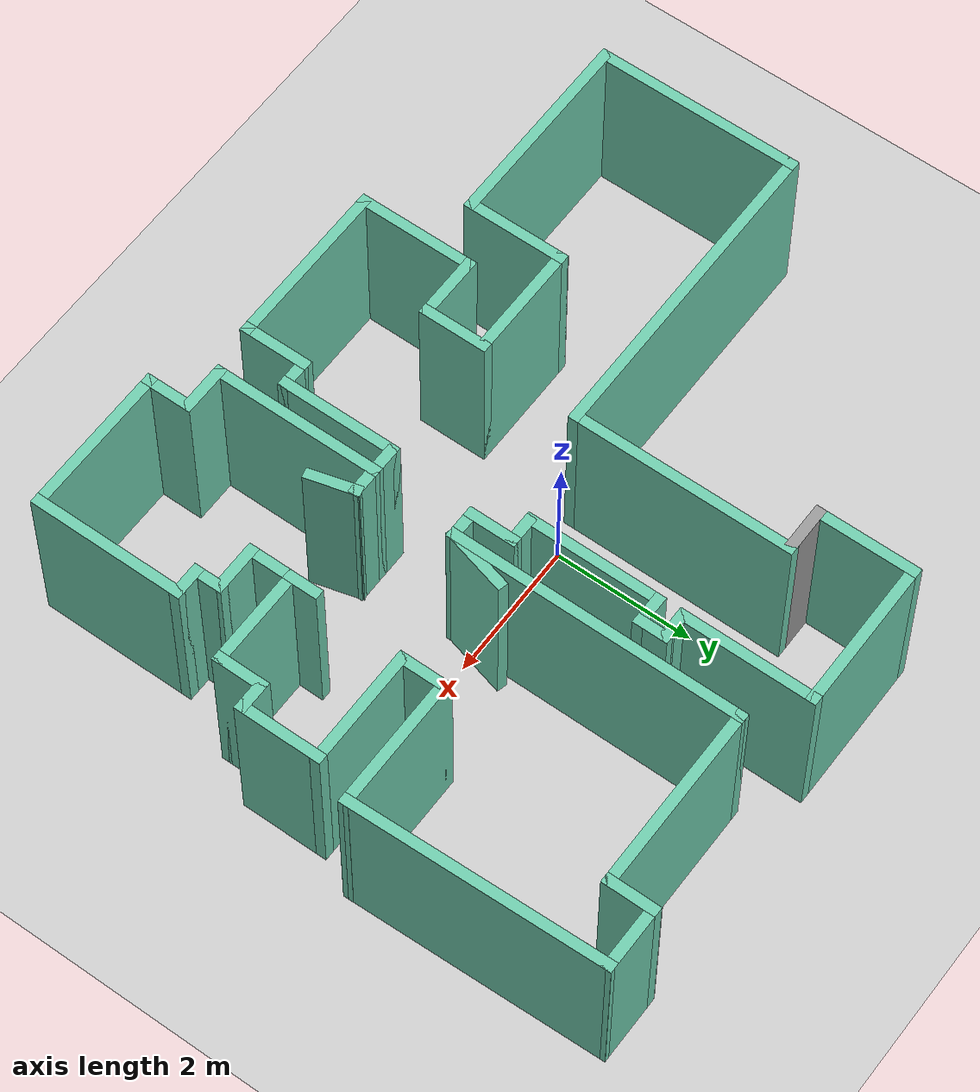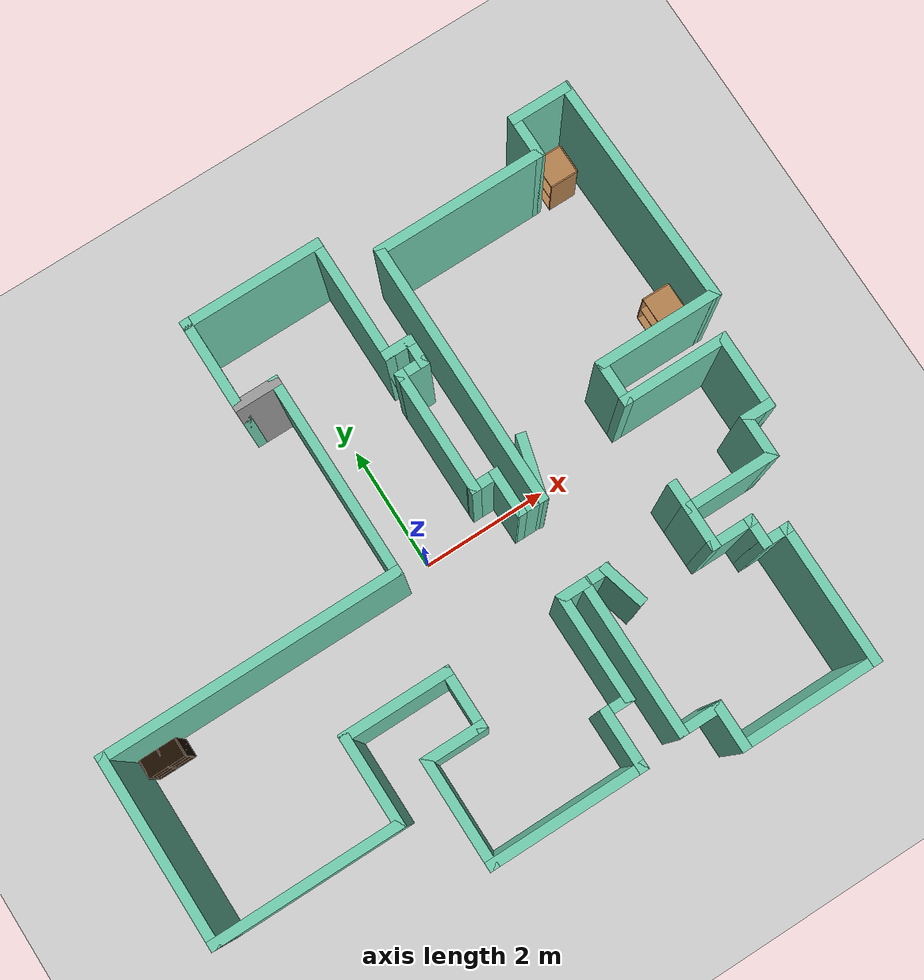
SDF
<sdf version="1.6">
 <world name="default">
  <light name="sun" type="directional">
   <pose>0 0 10 0 -0 0</pose>
   <diffuse>0.8 0.8 0.8 1</diffuse>
   <specular>0.2 0.2 0.2 1</specular>
   <attenuation>
    <range>1000</range>
    <constant>0.9</constant>
    <linear>0.01</linear>
    <quadratic>0.001</quadratic>
   </attenuation>
   <direction>-0.5 0.1 -0.9</direction>
  </light>
  <model name="ground_plane">
   <static>1</static>
   <link name="link">
    <collision name="collision">
     <geometry><plane><normal>0 0 1</normal><size>100 100</size></plane></geometry>
     <surface>
      <contact><collide_bitmask>65535</collide_bitmask></contact>
      <friction><ode><mu>100</mu><mu2>50</mu2></ode></friction>
     </surface>
    </collision>
    <visual name="visual">
     <cast_shadows>0</cast_shadows>
     <geometry><plane><normal>0 0 1</normal><size>100 100</size></plane></geometry>
     <material>
      <script><uri>file://media/materials/scripts/gazebo.material</uri><name>Gazebo/Grey</name></script>
     </material>
    </visual>
   </link>
  </model>
  <gravity>0 0 -9.8</gravity>
  <magnetic_field>6e-06 2.3e-05 -4.2e-05</magnetic_field>
  <atmosphere type="adiabatic"/>
  <physics name="default_physics" default="0" type="ode">
   <max_step_size>0.001</max_step_size>
   <real_time_factor>1</real_time_factor>
   <real_time_update_rate>1000</real_time_update_rate>
  </physics>
  <scene><ambient>0.4 0.4 0.4 1</ambient><background>0.7 0.7 0.7 1</background><shadows>1</shadows></scene>
  <audio><device>default</device></audio>
  <spherical_coordinates>
   <surface_model>EARTH_WGS84</surface_model>
   <latitude_deg>0</latitude_deg>
   <longitude_deg>0</longitude_deg>
   <elevation>0</elevation>
   <heading_deg>0</heading_deg>
  </spherical_coordinates>
  <model name="map_73">
   <pose>0.066687 -0.126076 0 0 -0 0</pose>
   <link name="Wall_1">
    <collision name="Wall_1_Collision">
     <geometry><box><size>1.5 0.15 2.5</size></box></geometry>
     <pose>0 0 1.25 0 -0 0</pose>
    </collision>
    <visual name="Wall_1_Visual">
     <pose>0 0 1.25 0 -0 0</pose>
     <geometry><box><size>1.5 0.15 2.5</size></box></geometry>
     <material>
      <script><uri>file://media/materials/scripts/gazebo.material</uri><name>Gazebo/Grey</name></script>
      <ambient>0.435294 0.796078 0.67451 1</ambient>
     </material>
     <meta><layer>0</layer></meta>
    </visual>
    <pose>-1.17603 3.74897 0 0 -0 -1.5708</pose>
   </link>
   <link name="Wall_10">
    <collision name="Wall_10_Collision">
     <geometry><box><size>1 0.15 2.5</size></box></geometry>
     <pose>0 0 1.25 0 -0 0</pose>
    </collision>
    <visual name="Wall_10_Visual">
     <pose>0 0 1.25 0 -0 0</pose>
     <geometry><box><size>1 0.15 2.5</size></box></geometry>
     <material>
      <script><uri>file://media/materials/scripts/gazebo.material</uri><name>Gazebo/Grey</name></script>
      <ambient>0.435294 0.796078 0.67451 1</ambient>
     </material>
     <meta><layer>0</layer></meta>
    </visual>
    <pose>-1.15103 -2.37603 0 0 -0 3.14159</pose>
   </link>
   <link name="Wall_11">
    <collision name="Wall_11_Collision">
     <geometry><box><size>1.75 0.15 2.5</size></box></geometry>
     <pose>0 0 1.25 0 -0 0</pose>
    </collision>
    <visual name="Wall_11_Visual">
     <pose>0 0 1.25 0 -0 0</pose>
     <geometry><box><size>1.75 0.15 2.5</size></box></geometry>
     <material>
      <script><uri>file://media/materials/scripts/gazebo.material</uri><name>Gazebo/Grey</name></script>
      <ambient>0.435294 0.796078 0.67451 1</ambient>
     </material>
     <meta><layer>0</layer></meta>
    </visual>
    <pose>-1.57603 -3.17603 0 0 -0 -1.5708</pose>
   </link>
   <link name="Wall_18">
    <collision name="Wall_18_Collision">
     <geometry><box><size>2.5 0.15 2.5</size></box></geometry>
     <pose>0 0 1.25 0 -0 0</pose>
    </collision>
    <visual name="Wall_18_Visual">
     <pose>0 0 1.25 0 -0 0</pose>
     <geometry><box><size>2.5 0.15 2.5</size></box></geometry>
     <material>
      <script><uri>file://media/materials/scripts/gazebo.material</uri><name>Gazebo/Grey</name></script>
      <ambient>0.435294 0.796078 0.67451 1</ambient>
     </material>
     <meta><layer>0</layer></meta>
    </visual>
    <pose>-0.401027 -3.97603 0 0 -0 0</pose>
   </link>
   <link name="Wall_19">
    <collision name="Wall_19_Collision">
     <geometry><box><size>1 0.15 2.5</size></box></geometry>
     <pose>0 0 1.25 0 -0 0</pose>
    </collision>
    <visual name="Wall_19_Visual">
     <pose>0 0 1.25 0 -0 0</pose>
     <geometry><box><size>1 0.15 2.5</size></box></geometry>
     <material>
      <script><uri>file://media/materials/scripts/gazebo.material</uri><name>Gazebo/Grey</name></script>
      <ambient>0.435294 0.796078 0.67451 1</ambient>
     </material>
     <meta><layer>0</layer></meta>
    </visual>
    <pose>0.773973 -3.55103 0 0 -0 1.5708</pose>
   </link>
   <link name="Wall_2">
    <collision name="Wall_2_Collision">
     <geometry><box><size>0.75 0.15 2.5</size></box></geometry>
     <pose>0 0 1.25 0 -0 0</pose>
    </collision>
    <visual name="Wall_2_Visual">
     <pose>0 0 1.25 0 -0 0</pose>
     <geometry><box><size>0.75 0.15 2.5</size></box></geometry>
     <material>
      <script><uri>file://media/materials/scripts/gazebo.material</uri><name>Gazebo/Grey</name></script>
      <ambient>1 1 1 1</ambient>
     </material>
     <meta><layer>0</layer></meta>
    </visual>
    <pose>-0.876027 3.07397 0 0 -0 0</pose>
   </link>
   <link name="Wall_20">
    <collision name="Wall_20_Collision">
     <geometry><box><size>0.5 0.15 2.5</size></box></geometry>
     <pose>0 0 1.25 0 -0 0</pose>
    </collision>
    <visual name="Wall_20_Visual">
     <pose>0 0 1.25 0 -0 0</pose>
     <geometry><box><size>0.5 0.15 2.5</size></box></geometry>
     <material>
      <script><uri>file://media/materials/scripts/gazebo.material</uri><name>Gazebo/Grey</name></script>
      <ambient>0.435294 0.796078 0.67451 1</ambient>
     </material>
     <meta><layer>0</layer></meta>
    </visual>
    <pose>0.948973 -3.12603 0 0 -0 0</pose>
   </link>
   <link name="Wall_21">
    <collision name="Wall_21_Collision">
     <geometry><box><size>1.75 0.15 2.5</size></box></geometry>
     <pose>0 0 1.25 0 -0 0</pose>
    </collision>
    <visual name="Wall_21_Visual">
     <pose>0 0 1.25 0 -0 0</pose>
     <geometry><box><size>1.75 0.15 2.5</size></box></geometry>
     <material>
      <script><uri>file://media/materials/scripts/gazebo.material</uri><name>Gazebo/Grey</name></script>
      <ambient>0.435294 0.796078 0.67451 1</ambient>
     </material>
     <meta><layer>0</layer></meta>
    </visual>
    <pose>1.12397 -2.32603 0 0 -0 1.5708</pose>
   </link>
   <link name="Wall_22">
    <collision name="Wall_22_Collision">
     <geometry><box><size>0.5 0.15 2.5</size></box></geometry>
     <pose>0 0 1.25 0 -0 0</pose>
    </collision>
    <visual name="Wall_22_Visual">
     <pose>0 0 1.25 0 -0 0</pose>
     <geometry><box><size>0.5 0.15 2.5</size></box></geometry>
     <material>
      <script><uri>file://media/materials/scripts/gazebo.material</uri><name>Gazebo/Grey</name></script>
      <ambient>0.435294 0.796078 0.67451 1</ambient>
     </material>
     <meta><layer>0</layer></meta>
    </visual>
    <pose>1.29897 -1.52603 0 0 -0 0</pose>
   </link>
   <link name="Wall_23">
    <collision name="Wall_23_Collision">
     <geometry><box><size>2.5 0.15 2.5</size></box></geometry>
     <pose>0 0 1.25 0 -0 0</pose>
    </collision>
    <visual name="Wall_23_Visual">
     <pose>0 0 1.25 0 -0 0</pose>
     <geometry><box><size>2.5 0.15 2.5</size></box></geometry>
     <material>
      <script><uri>file://media/materials/scripts/gazebo.material</uri><name>Gazebo/Grey</name></script>
      <ambient>0.435294 0.796078 0.67451 1</ambient>
     </material>
     <meta><layer>0</layer></meta>
    </visual>
    <pose>1.47397 -2.70103 0 0 -0 -1.5708</pose>
   </link>
   <link name="Wall_24">
    <collision name="Wall_24_Collision">
     <geometry><box><size>0.75 0.15 2.5</size></box></geometry>
     <pose>0 0 1.25 0 -0 0</pose>
    </collision>
    <visual name="Wall_24_Visual">
     <pose>0 0 1.25 0 -0 0</pose>
     <geometry><box><size>0.75 0.15 2.5</size></box></geometry>
     <material>
      <script><uri>file://media/materials/scripts/gazebo.material</uri><name>Gazebo/Grey</name></script>
      <ambient>0.435294 0.796078 0.67451 1</ambient>
     </material>
     <meta><layer>0</layer></meta>
    </visual>
    <pose>1.77397 -3.87603 0 0 -0 0</pose>
   </link>
   <link name="Wall_25">
    <collision name="Wall_25_Collision">
     <geometry><box><size>0.75 0.15 2.5</size></box></geometry>
     <pose>0 0 1.25 0 -0 0</pose>
    </collision>
    <visual name="Wall_25_Visual">
     <pose>0 0 1.25 0 -0 0</pose>
     <geometry><box><size>0.75 0.15 2.5</size></box></geometry>
     <material>
      <script><uri>file://media/materials/scripts/gazebo.material</uri><name>Gazebo/Grey</name></script>
      <ambient>0.435294 0.796078 0.67451 1</ambient>
     </material>
     <meta><layer>0</layer></meta>
    </visual>
    <pose>2.07397 -4.17603 0 0 -0 -1.5708</pose>
   </link>
   <link name="Wall_26">
    <collision name="Wall_26_Collision">
     <geometry><box><size>2.25 0.15 2.5</size></box></geometry>
     <pose>0 0 1.25 0 -0 0</pose>
    </collision>
    <visual name="Wall_26_Visual">
     <pose>0 0 1.25 0 -0 0</pose>
     <geometry><box><size>2.25 0.15 2.5</size></box></geometry>
     <material>
      <script><uri>file://media/materials/scripts/gazebo.material</uri><name>Gazebo/Grey</name></script>
      <ambient>0.435294 0.796078 0.67451 1</ambient>
     </material>
     <meta><layer>0</layer></meta>
    </visual>
    <pose>3.12397 -4.47603 0 0 -0 0</pose>
   </link>
   <link name="Wall_27">
    <collision name="Wall_27_Collision">
     <geometry><box><size>2.25 0.15 2.5</size></box></geometry>
     <pose>0 0 1.25 0 -0 0</pose>
    </collision>
    <visual name="Wall_27_Visual">
     <pose>0 0 1.25 0 -0 0</pose>
     <geometry><box><size>2.25 0.15 2.5</size></box></geometry>
     <material>
      <script><uri>file://media/materials/scripts/gazebo.material</uri><name>Gazebo/Grey</name></script>
      <ambient>0.435294 0.796078 0.67451 1</ambient>
     </material>
     <meta><layer>0</layer></meta>
    </visual>
    <pose>4.17397 -3.42603 0 0 -0 1.5708</pose>
   </link>
   <link name="Wall_28">
    <collision name="Wall_28_Collision">
     <geometry><box><size>0.5 0.15 2.5</size></box></geometry>
     <pose>0 0 1.25 0 -0 0</pose>
    </collision>
    <visual name="Wall_28_Visual">
     <pose>0 0 1.25 0 -0 0</pose>
     <geometry><box><size>0.5 0.15 2.5</size></box></geometry>
     <material>
      <script><uri>file://media/materials/scripts/gazebo.material</uri><name>Gazebo/Grey</name></script>
      <ambient>0.435294 0.796078 0.67451 1</ambient>
     </material>
     <meta><layer>0</layer></meta>
    </visual>
    <pose>3.99897 -2.37603 0 0 -0 3.14159</pose>
   </link>
   <link name="Wall_29">
    <collision name="Wall_29_Collision">
     <geometry><box><size>0.5 0.15 2.5</size></box></geometry>
     <pose>0 0 1.25 0 -0 0</pose>
    </collision>
    <visual name="Wall_29_Visual">
     <pose>0 0 1.25 0 -0 0</pose>
     <geometry><box><size>0.5 0.15 2.5</size></box></geometry>
     <material>
      <script><uri>file://media/materials/scripts/gazebo.material</uri><name>Gazebo/Grey</name></script>
      <ambient>0.435294 0.796078 0.67451 1</ambient>
     </material>
     <meta><layer>0</layer></meta>
    </visual>
    <pose>3.82397 -2.20103 0 0 -0 1.5708</pose>
   </link>
   <link name="Wall_3">
    <collision name="Wall_3_Collision">
     <geometry><box><size>3.25 0.15 2.5</size></box></geometry>
     <pose>0 0 1.25 0 -0 0</pose>
    </collision>
    <visual name="Wall_3_Visual">
     <pose>0 0 1.25 0 -0 0</pose>
     <geometry><box><size>3.25 0.15 2.5</size></box></geometry>
     <material>
      <script><uri>file://media/materials/scripts/gazebo.material</uri><name>Gazebo/Grey</name></script>
      <ambient>0.435294 0.796078 0.67451 1</ambient>
     </material>
     <meta><layer>0</layer></meta>
    </visual>
    <pose>-0.576027 1.52397 0 0 -0 -1.5708</pose>
   </link>
   <link name="Wall_30">
    <collision name="Wall_30_Collision">
     <geometry><box><size>0.75 0.15 2.5</size></box></geometry>
     <pose>0 0 1.25 0 -0 0</pose>
    </collision>
    <visual name="Wall_30_Visual">
     <pose>0 0 1.25 0 -0 0</pose>
     <geometry><box><size>0.75 0.15 2.5</size></box></geometry>
     <material>
      <script><uri>file://media/materials/scripts/gazebo.material</uri><name>Gazebo/Grey</name></script>
      <ambient>0.435294 0.796078 0.67451 1</ambient>
     </material>
     <meta><layer>0</layer></meta>
    </visual>
    <pose>3.52397 -2.02603 0 0 -0 3.14159</pose>
   </link>
   <link name="Wall_31">
    <collision name="Wall_31_Collision">
     <geometry><box><size>0.75 0.15 2.5</size></box></geometry>
     <pose>0 0 1.25 0 -0 0</pose>
    </collision>
    <visual name="Wall_31_Visual">
     <pose>0 0 1.25 0 -0 0</pose>
     <geometry><box><size>0.75 0.15 2.5</size></box></geometry>
     <material>
      <script><uri>file://media/materials/scripts/gazebo.material</uri><name>Gazebo/Grey</name></script>
      <ambient>0.435294 0.796078 0.67451 1</ambient>
     </material>
     <meta><layer>0</layer></meta>
    </visual>
    <pose>3.22397 -1.72603 0 0 -0 1.5708</pose>
   </link>
   <link name="Wall_32">
    <collision name="Wall_32_Collision">
     <geometry><box><size>1.5 0.15 2.5</size></box></geometry>
     <pose>0 0 1.25 0 -0 0</pose>
    </collision>
    <visual name="Wall_32_Visual">
     <pose>0 0 1.25 0 -0 0</pose>
     <geometry><box><size>1.5 0.15 2.5</size></box></geometry>
     <material>
      <script><uri>file://media/materials/scripts/gazebo.material</uri><name>Gazebo/Grey</name></script>
      <ambient>0.435294 0.796078 0.67451 1</ambient>
     </material>
     <meta><layer>0</layer></meta>
    </visual>
    <pose>3.89897 -1.42603 0 0 -0 0</pose>
   </link>
   <link name="Wall_33">
    <collision name="Wall_33_Collision">
     <geometry><box><size>0.75 0.15 2.5</size></box></geometry>
     <pose>0 0 1.25 0 -0 0</pose>
    </collision>
    <visual name="Wall_33_Visual">
     <pose>0 0 1.25 0 -0 0</pose>
     <geometry><box><size>0.75 0.15 2.5</size></box></geometry>
     <material>
      <script><uri>file://media/materials/scripts/gazebo.material</uri><name>Gazebo/Grey</name></script>
      <ambient>0.435294 0.796078 0.67451 1</ambient>
     </material>
     <meta><layer>0</layer></meta>
    </visual>
    <pose>4.57397 -1.12603 0 0 -0 1.5708</pose>
   </link>
   <link name="Wall_34">
    <collision name="Wall_34_Collision">
     <geometry><box><size>0.5 0.15 2.5</size></box></geometry>
     <pose>0 0 1.25 0 -0 0</pose>
    </collision>
    <visual name="Wall_34_Visual">
     <pose>0 0 1.25 0 -0 0</pose>
     <geometry><box><size>0.5 0.15 2.5</size></box></geometry>
     <material>
      <script><uri>file://media/materials/scripts/gazebo.material</uri><name>Gazebo/Grey</name></script>
      <ambient>0.435294 0.796078 0.67451 1</ambient>
     </material>
     <meta><layer>0</layer></meta>
    </visual>
    <pose>4.74897 -0.826027 0 0 -0 0</pose>
   </link>
   <link name="Wall_35">
    <collision name="Wall_35_Collision">
     <geometry><box><size>1.25 0.15 2.5</size></box></geometry>
     <pose>0 0 1.25 0 -0 0</pose>
    </collision>
    <visual name="Wall_35_Visual">
     <pose>0 0 1.25 0 -0 0</pose>
     <geometry><box><size>1.25 0.15 2.5</size></box></geometry>
     <material>
      <script><uri>file://media/materials/scripts/gazebo.material</uri><name>Gazebo/Grey</name></script>
      <ambient>0.435294 0.796078 0.67451 1</ambient>
     </material>
     <meta><layer>0</layer></meta>
    </visual>
    <pose>4.92397 -0.276027 0 0 -0 1.5708</pose>
   </link>
   <link name="Wall_36">
    <collision name="Wall_36_Collision">
     <geometry><box><size>1.75 0.15 2.5</size></box></geometry>
     <pose>0 0 1.25 0 -0 0</pose>
    </collision>
    <visual name="Wall_36_Visual">
     <pose>0 0 1.25 0 -0 0</pose>
     <geometry><box><size>1.75 0.15 2.5</size></box></geometry>
     <material>
      <script><uri>file://media/materials/scripts/gazebo.material</uri><name>Gazebo/Grey</name></script>
      <ambient>0.435294 0.796078 0.67451 1</ambient>
     </material>
     <meta><layer>0</layer></meta>
    </visual>
    <pose>4.12397 0.273973 0 0 -0 3.14159</pose>
   </link>
   <link name="Wall_37">
    <collision name="Wall_37_Collision">
     <geometry><box><size>0.75 0.15 2.5</size></box></geometry>
     <pose>0 0 1.25 0 -0 0</pose>
    </collision>
    <visual name="Wall_37_Visual">
     <pose>0 0 1.25 0 -0 0</pose>
     <geometry><box><size>0.75 0.15 2.5</size></box></geometry>
     <material>
      <script><uri>file://media/materials/scripts/gazebo.material</uri><name>Gazebo/Grey</name></script>
      <ambient>0.435294 0.796078 0.67451 1</ambient>
     </material>
     <meta><layer>0</layer></meta>
    </visual>
    <pose>3.32397 0.573973 0 0 -0 1.5708</pose>
   </link>
   <link name="Wall_38">
    <collision name="Wall_38_Collision">
     <geometry><box><size>2 0.15 2.5</size></box></geometry>
     <pose>0 0 1.25 0 -0 0</pose>
    </collision>
    <visual name="Wall_38_Visual">
     <pose>0 0 1.25 0 -0 0</pose>
     <geometry><box><size>2 0.15 2.5</size></box></geometry>
     <material>
      <script><uri>file://media/materials/scripts/gazebo.material</uri><name>Gazebo/Grey</name></script>
      <ambient>0.435294 0.796078 0.67451 1</ambient>
     </material>
     <meta><layer>0</layer></meta>
    </visual>
    <pose>4.24897 0.873973 0 0 -0 0</pose>
   </link>
   <link name="Wall_4">
    <collision name="Wall_4_Collision">
     <geometry><box><size>4.75 0.15 2.5</size></box></geometry>
     <pose>0 0 1.25 0 -0 0</pose>
    </collision>
    <visual name="Wall_4_Visual">
     <pose>0 0 1.25 0 -0 0</pose>
     <geometry><box><size>4.75 0.15 2.5</size></box></geometry>
     <material>
      <script><uri>file://media/materials/scripts/gazebo.material</uri><name>Gazebo/Grey</name></script>
      <ambient>0.435294 0.796078 0.67451 1</ambient>
     </material>
     <meta><layer>0</layer></meta>
    </visual>
    <pose>-2.87603 -0.026027 0 0 -0 3.14159</pose>
   </link>
   <link name="Wall_40">
    <collision name="Wall_40_Collision">
     <geometry><box><size>0.5 0.15 2.5</size></box></geometry>
     <pose>0 0 1.25 0 -0 0</pose>
    </collision>
    <visual name="Wall_40_Visual">
     <pose>0 0 1.25 0 -0 0</pose>
     <geometry><box><size>0.5 0.15 2.5</size></box></geometry>
     <material>
      <script><uri>file://media/materials/scripts/gazebo.material</uri><name>Gazebo/Grey</name></script>
      <ambient>0.435294 0.796078 0.67451 1</ambient>
     </material>
     <meta><layer>0</layer></meta>
    </visual>
    <pose>1.64897 -1.52603 0 0 -0 0</pose>
   </link>
   <link name="Wall_41">
    <collision name="Wall_41_Collision">
     <geometry><box><size>0.75 0.15 2.5</size></box></geometry>
     <pose>0 0 1.25 0 -0 0</pose>
    </collision>
    <visual name="Wall_41_Visual">
     <pose>0 0 1.25 0 -0 0</pose>
     <geometry><box><size>0.75 0.15 2.5</size></box></geometry>
     <material>
      <script><uri>file://media/materials/scripts/gazebo.material</uri><name>Gazebo/Grey</name></script>
      <ambient>0.435294 0.796078 0.67451 1</ambient>
     </material>
     <meta><layer>0</layer></meta>
    </visual>
    <pose>1.90162 -1.8158 0 0 -0 -1.309</pose>
   </link>
   <link name="Wall_43">
    <collision name="Wall_43_Collision">
     <geometry><box><size>0.5 0.15 2.5</size></box></geometry>
     <pose>0 0 1.25 0 -0 0</pose>
    </collision>
    <visual name="Wall_43_Visual">
     <pose>0 0 1.25 0 -0 0</pose>
     <geometry><box><size>0.5 0.15 2.5</size></box></geometry>
     <material>
      <script><uri>file://media/materials/scripts/gazebo.material</uri><name>Gazebo/Grey</name></script>
      <ambient>0.435294 0.796078 0.67451 1</ambient>
     </material>
     <meta><layer>0</layer></meta>
    </visual>
    <pose>3.22397 -1.25103 0 0 -0 1.5708</pose>
   </link>
   <link name="Wall_5">
    <collision name="Wall_5_Collision">
     <geometry><box><size>3 0.15 2.5</size></box></geometry>
     <pose>0 0 1.25 0 -0 0</pose>
    </collision>
    <visual name="Wall_5_Visual">
     <pose>0 0 1.25 0 -0 0</pose>
     <geometry><box><size>3 0.15 2.5</size></box></geometry>
     <material>
      <script><uri>file://media/materials/scripts/gazebo.material</uri><name>Gazebo/Grey</name></script>
      <ambient>0.435294 0.796078 0.67451 1</ambient>
     </material>
     <meta><layer>0</layer></meta>
    </visual>
    <pose>-5.17603 -1.45103 0 0 -0 -1.5708</pose>
   </link>
   <link name="Wall_54">
    <collision name="Wall_54_Collision">
     <geometry><box><size>2.25 0.15 2.5</size></box></geometry>
     <pose>0 0 1.25 0 -0 0</pose>
    </collision>
    <visual name="Wall_54_Visual">
     <pose>0 0 1.25 0 -0 0</pose>
     <geometry><box><size>2.25 0.15 2.5</size></box></geometry>
     <material>
      <script><uri>file://media/materials/scripts/gazebo.material</uri><name>Gazebo/Grey</name></script>
      <ambient>0.435294 0.796078 0.67451 1</ambient>
     </material>
     <meta><layer>0</layer></meta>
    </visual>
    <pose>-0.126027 4.42397 0 0 -0 0</pose>
   </link>
   <link name="Wall_55">
    <collision name="Wall_55_Collision">
     <geometry><box><size>2 0.15 2.5</size></box></geometry>
     <pose>0 0 1.25 0 -0 0</pose>
    </collision>
    <visual name="Wall_55_Visual">
     <pose>0 0 1.25 0 -0 0</pose>
     <geometry><box><size>2 0.15 2.5</size></box></geometry>
     <material>
      <script><uri>file://media/materials/scripts/gazebo.material</uri><name>Gazebo/Grey</name></script>
      <ambient>0.435294 0.796078 0.67451 1</ambient>
     </material>
     <meta><layer>0</layer></meta>
    </visual>
    <pose>0.923973 3.49897 0 0 -0 -1.5708</pose>
   </link>
   <link name="Wall_56">
    <collision name="Wall_56_Collision">
     <geometry><box><size>0.5 0.15 2.5</size></box></geometry>
     <pose>0 0 1.25 0 -0 0</pose>
    </collision>
    <visual name="Wall_56_Visual">
     <pose>0 0 1.25 0 -0 0</pose>
     <geometry><box><size>0.5 0.15 2.5</size></box></geometry>
     <material>
      <script><uri>file://media/materials/scripts/gazebo.material</uri><name>Gazebo/Grey</name></script>
      <ambient>0.435294 0.796078 0.67451 1</ambient>
     </material>
     <meta><layer>0</layer></meta>
    </visual>
    <pose>1.09897 2.57397 0 0 -0 0</pose>
   </link>
   <link name="Wall_59">
    <collision name="Wall_59_Collision">
     <geometry><box><size>0.5 0.15 2.5</size></box></geometry>
     <pose>0 0 1.25 0 -0 0</pose>
    </collision>
    <visual name="Wall_59_Visual">
     <pose>0 0 1.25 0 -0 0</pose>
     <geometry><box><size>0.5 0.15 2.5</size></box></geometry>
     <material>
      <script><uri>file://media/materials/scripts/gazebo.material</uri><name>Gazebo/Grey</name></script>
      <ambient>0.435294 0.796078 0.67451 1</ambient>
     </material>
     <meta><layer>0</layer></meta>
    </visual>
    <pose>1.27397 2.39897 0 0 -0 -1.5708</pose>
   </link>
   <link name="Wall_6">
    <collision name="Wall_6_Collision">
     <geometry><box><size>3 0.15 2.5</size></box></geometry>
     <pose>0 0 1.25 0 -0 0</pose>
    </collision>
    <visual name="Wall_6_Visual">
     <pose>0 0 1.25 0 -0 0</pose>
     <geometry><box><size>3 0.15 2.5</size></box></geometry>
     <material>
      <script><uri>file://media/materials/scripts/gazebo.material</uri><name>Gazebo/Grey</name></script>
      <ambient>0.435294 0.796078 0.67451 1</ambient>
     </material>
     <meta><layer>0</layer></meta>
    </visual>
    <pose>-3.75103 -2.87603 0 0 -0 0</pose>
   </link>
   <link name="Wall_60">
    <collision name="Wall_60_Collision">
     <geometry><box><size>0.5 0.15 2.5</size></box></geometry>
     <pose>0 0 1.25 0 -0 0</pose>
    </collision>
    <visual name="Wall_60_Visual">
     <pose>0 0 1.25 0 -0 0</pose>
     <geometry><box><size>0.5 0.15 2.5</size></box></geometry>
     <material>
      <script><uri>file://media/materials/scripts/gazebo.material</uri><name>Gazebo/Grey</name></script>
      <ambient>0.435294 0.796078 0.67451 1</ambient>
     </material>
     <meta><layer>0</layer></meta>
    </visual>
    <pose>1.09897 2.22397 0 0 -0 3.14159</pose>
   </link>
   <link name="Wall_61">
    <collision name="Wall_61_Collision">
     <geometry><box><size>2 0.15 2.5</size></box></geometry>
     <pose>0 0 1.25 0 -0 0</pose>
    </collision>
    <visual name="Wall_61_Visual">
     <pose>0 0 1.25 0 -0 0</pose>
     <geometry><box><size>2 0.15 2.5</size></box></geometry>
     <material>
      <script><uri>file://media/materials/scripts/gazebo.material</uri><name>Gazebo/Grey</name></script>
      <ambient>0.435294 0.796078 0.67451 1</ambient>
     </material>
     <meta><layer>0</layer></meta>
    </visual>
    <pose>0.923973 1.29897 0 0 -0 -1.5708</pose>
   </link>
   <link name="Wall_62">
    <collision name="Wall_62_Collision">
     <geometry><box><size>0.5 0.15 2.5</size></box></geometry>
     <pose>0 0 1.25 0 -0 0</pose>
    </collision>
    <visual name="Wall_62_Visual">
     <pose>0 0 1.25 0 -0 0</pose>
     <geometry><box><size>0.5 0.15 2.5</size></box></geometry>
     <material>
      <script><uri>file://media/materials/scripts/gazebo.material</uri><name>Gazebo/Grey</name></script>
      <ambient>0.435294 0.796078 0.67451 1</ambient>
     </material>
     <meta><layer>0</layer></meta>
    </visual>
    <pose>1.09897 0.373973 0 0 -0 0</pose>
   </link>
   <link name="Wall_63">
    <collision name="Wall_63_Collision">
     <geometry><box><size>0.75 0.15 2.5</size></box></geometry>
     <pose>0 0 1.25 0 -0 0</pose>
    </collision>
    <visual name="Wall_63_Visual">
     <pose>0 0 1.25 0 -0 0</pose>
     <geometry><box><size>0.75 0.15 2.5</size></box></geometry>
     <material>
      <script><uri>file://media/materials/scripts/gazebo.material</uri><name>Gazebo/Grey</name></script>
      <ambient>0.435294 0.796078 0.67451 1</ambient>
     </material>
     <meta><layer>0</layer></meta>
    </visual>
    <pose>1.27397 0.073973 0 0 -0 -1.5708</pose>
   </link>
   <link name="Wall_64">
    <collision name="Wall_64_Collision">
     <geometry><box><size>0.5 0.15 2.5</size></box></geometry>
     <pose>0 0 1.25 0 -0 0</pose>
    </collision>
    <visual name="Wall_64_Visual">
     <pose>0 0 1.25 0 -0 0</pose>
     <geometry><box><size>0.5 0.15 2.5</size></box></geometry>
     <material>
      <script><uri>file://media/materials/scripts/gazebo.material</uri><name>Gazebo/Grey</name></script>
      <ambient>0.435294 0.796078 0.67451 1</ambient>
     </material>
     <meta><layer>0</layer></meta>
    </visual>
    <pose>1.44897 -0.226027 0 0 -0 0</pose>
   </link>
   <link name="Wall_65">
    <collision name="Wall_65_Collision">
     <geometry><box><size>4.25 0.15 2.5</size></box></geometry>
     <pose>0 0 1.25 0 -0 0</pose>
    </collision>
    <visual name="Wall_65_Visual">
     <pose>0 0 1.25 0 -0 0</pose>
     <geometry><box><size>4.25 0.15 2.5</size></box></geometry>
     <material>
      <script><uri>file://media/materials/scripts/gazebo.material</uri><name>Gazebo/Grey</name></script>
      <ambient>0.435294 0.796078 0.67451 1</ambient>
     </material>
     <meta><layer>0</layer></meta>
    </visual>
    <pose>1.62397 1.82397 0 0 -0 1.5708</pose>
   </link>
   <link name="Wall_66">
    <collision name="Wall_66_Collision">
     <geometry><box><size>2.75 0.15 2.5</size></box></geometry>
     <pose>0 0 1.25 0 -0 0</pose>
    </collision>
    <visual name="Wall_66_Visual">
     <pose>0 0 1.25 0 -0 0</pose>
     <geometry><box><size>2.75 0.15 2.5</size></box></geometry>
     <material>
      <script><uri>file://media/materials/scripts/gazebo.material</uri><name>Gazebo/Grey</name></script>
      <ambient>0.435294 0.796078 0.67451 1</ambient>
     </material>
     <meta><layer>0</layer></meta>
    </visual>
    <pose>2.92397 3.87397 0 0 -0 0</pose>
   </link>
   <link name="Wall_67">
    <collision name="Wall_67_Collision">
     <geometry><box><size>0.75 0.15 2.5</size></box></geometry>
     <pose>0 0 1.25 0 -0 0</pose>
    </collision>
    <visual name="Wall_67_Visual">
     <pose>0 0 1.25 0 -0 0</pose>
     <geometry><box><size>0.75 0.15 2.5</size></box></geometry>
     <material>
      <script><uri>file://media/materials/scripts/gazebo.material</uri><name>Gazebo/Grey</name></script>
      <ambient>0.435294 0.796078 0.67451 1</ambient>
     </material>
     <meta><layer>0</layer></meta>
    </visual>
    <pose>4.22397 4.17397 0 0 -0 1.5708</pose>
   </link>
   <link name="Wall_68">
    <collision name="Wall_68_Collision">
     <geometry><box><size>1 0.15 2.5</size></box></geometry>
     <pose>0 0 1.25 0 -0 0</pose>
    </collision>
    <visual name="Wall_68_Visual">
     <pose>0 0 1.25 0 -0 0</pose>
     <geometry><box><size>1 0.15 2.5</size></box></geometry>
     <material>
      <script><uri>file://media/materials/scripts/gazebo.material</uri><name>Gazebo/Grey</name></script>
      <ambient>0.435294 0.796078 0.67451 1</ambient>
     </material>
     <meta><layer>0</layer></meta>
    </visual>
    <pose>4.64897 4.47397 0 0 -0 0</pose>
   </link>
   <link name="Wall_69">
    <collision name="Wall_69_Collision">
     <geometry><box><size>3.75139 0.15 2.5</size></box></geometry>
     <pose>0 0 1.25 0 -0 0</pose>
    </collision>
    <visual name="Wall_69_Visual">
     <pose>0 0 1.25 0 -0 0</pose>
     <geometry><box><size>3.75139 0.15 2.5</size></box></geometry>
     <material>
      <script><uri>file://media/materials/scripts/gazebo.material</uri><name>Gazebo/Grey</name></script>
      <ambient>0.435294 0.796078 0.67451 1</ambient>
     </material>
     <meta><layer>0</layer></meta>
    </visual>
    <pose>5.12397 2.67397 0 0 -0 -1.54303</pose>
   </link>
   <link name="Wall_7">
    <collision name="Wall_7_Collision">
     <geometry><box><size>1.5 0.15 2.5</size></box></geometry>
     <pose>0 0 1.25 0 -0 0</pose>
    </collision>
    <visual name="Wall_7_Visual">
     <pose>0 0 1.25 0 -0 0</pose>
     <geometry><box><size>1.5 0.15 2.5</size></box></geometry>
     <material>
      <script><uri>file://media/materials/scripts/gazebo.material</uri><name>Gazebo/Grey</name></script>
      <ambient>0.435294 0.796078 0.67451 1</ambient>
     </material>
     <meta><layer>0</layer></meta>
    </visual>
    <pose>-2.32603 -2.20103 0 0 -0 1.5708</pose>
   </link>
   <link name="Wall_72">
    <collision name="Wall_72_Collision">
     <geometry><box><size>1 0.15 2.5</size></box></geometry>
     <pose>0 0 1.25 0 -0 0</pose>
    </collision>
    <visual name="Wall_72_Visual">
     <pose>0 0 1.25 0 -0 0</pose>
     <geometry><box><size>1 0.15 2.5</size></box></geometry>
     <material>
      <script><uri>file://media/materials/scripts/gazebo.material</uri><name>Gazebo/Grey</name></script>
      <ambient>0.435294 0.796078 0.67451 1</ambient>
     </material>
     <meta><layer>0</layer></meta>
    </visual>
    <pose>1.73397 0.184492 0 0 -0 1.309</pose>
   </link>
   <link name="Wall_8">
    <collision name="Wall_8_Collision">
     <geometry><box><size>1.75 0.15 2.5</size></box></geometry>
     <pose>0 0 1.25 0 -0 0</pose>
    </collision>
    <visual name="Wall_8_Visual">
     <pose>0 0 1.25 0 -0 0</pose>
     <geometry><box><size>1.75 0.15 2.5</size></box></geometry>
     <material>
      <script><uri>file://media/materials/scripts/gazebo.material</uri><name>Gazebo/Grey</name></script>
      <ambient>0.435294 0.796078 0.67451 1</ambient>
     </material>
     <meta><layer>0</layer></meta>
    </visual>
    <pose>-1.52603 -1.52603 0 0 -0 0</pose>
   </link>
   <link name="Wall_9">
    <collision name="Wall_9_Collision">
     <geometry><box><size>1 0.15 2.5</size></box></geometry>
     <pose>0 0 1.25 0 -0 0</pose>
    </collision>
    <visual name="Wall_9_Visual">
     <pose>0 0 1.25 0 -0 0</pose>
     <geometry><box><size>1 0.15 2.5</size></box></geometry>
     <material>
      <script><uri>file://media/materials/scripts/gazebo.material</uri><name>Gazebo/Grey</name></script>
      <ambient>0.435294 0.796078 0.67451 1</ambient>
     </material>
     <meta><layer>0</layer></meta>
    </visual>
    <pose>-0.726027 -1.95103 0 0 -0 -1.5708</pose>
   </link>
   <static>1</static>
  </model>
  <model name="cabinet">
   <static>1</static>
   <link name="cabinet_bottom_plate">
    <inertial>
     <pose>0 0 -1 0 -0 0</pose>
     <inertia><ixx>2.05</ixx><ixy>0</ixy><ixz>0</ixz><iyy>2.05</iyy><iyz>0</iyz><izz>2.05</izz></inertia>
     <mass>25</mass>
    </inertial>
    <collision name="cabinet_bottom_plate_geom">
     <pose>0 0 0.01 0 -0 0</pose>
     <geometry><box><size>0.45 0.45 0.02</size></box></geometry>
    </collision>
    <visual name="cabinet_bottom_plate_geom_visual">
     <pose>0 0 0.01 0 -0 0</pose>
     <geometry><box><size>0.45 0.45 0.02</size></box></geometry>
     <material>
      <script><uri>file://media/materials/scripts/gazebo.material</uri><name>Gazebo/Wood</name></script>
     </material>
    </visual>
    <collision name="cabinet_bottom_plate_geom_cabinet_back_plate">
     <pose>0.235 0 0.51 0 -0 0</pose>
     <geometry><box><size>0.02 0.45 1.02</size></box></geometry>
    </collision>
    <visual name="cabinet_bottom_plate_geom_cabinet_back_plate_visual">
     <pose>0.235 0 0.51 0 -0 0</pose>
     <geometry><box><size>0.02 0.45 1.02</size></box></geometry>
     <material>
      <script><uri>file://media/materials/scripts/gazebo.material</uri><name>Gazebo/Wood</name></script>
     </material>
    </visual>
    <collision name="cabinet_bottom_plate_geom_cabinet_left_plate">
     <pose>0 0.235 0.51 0 -0 0</pose>
     <geometry><box><size>0.45 0.02 1.02</size></box></geometry>
    </collision>
    <visual name="cabinet_bottom_plate_geom_cabinet_left_plate_visual">
     <pose>0 0.235 0.51 0 -0 0</pose>
     <geometry><box><size>0.45 0.02 1.02</size></box></geometry>
     <material>
      <script><uri>file://media/materials/scripts/gazebo.material</uri><name>Gazebo/Wood</name></script>
     </material>
    </visual>
    <collision name="cabinet_bottom_plate_geom_cabinet_middle_plate">
     <pose>0 0 0.51 0 -0 0</pose>
     <geometry><box><size>0.45 0.45 0.02</size></box></geometry>
    </collision>
    <visual name="cabinet_bottom_plate_geom_cabinet_middle_plate_visual">
     <pose>0 0 0.51 0 -0 0</pose>
     <geometry><box><size>0.45 0.45 0.02</size></box></geometry>
     <material>
      <script><uri>file://media/materials/scripts/gazebo.material</uri><name>Gazebo/Wood</name></script>
     </material>
    </visual>
    <collision name="cabinet_bottom_plate_geom_cabinet_right_plate">
     <pose>0 -0.235 0.51 0 -0 0</pose>
     <geometry><box><size>0.45 0.02 1.02</size></box></geometry>
    </collision>
    <visual name="cabinet_bottom_plate_geom_cabinet_right_plate_visual">
     <pose>0 -0.235 0.51 0 -0 0</pose>
     <geometry><box><size>0.45 0.02 1.02</size></box></geometry>
     <material>
      <script><uri>file://media/materials/scripts/gazebo.material</uri><name>Gazebo/Wood</name></script>
     </material>
    </visual>
    <collision name="cabinet_bottom_plate_geom_cabinet_top_plate">
     <pose>0 0 1.01 0 -0 0</pose>
     <geometry><box><size>0.45 0.45 0.02</size></box></geometry>
    </collision>
    <visual name="cabinet_bottom_plate_geom_cabinet_top_plate_visual">
     <pose>0 0 1.01 0 -0 0</pose>
     <geometry><box><size>0.45 0.45 0.02</size></box></geometry>
     <material>
      <script><uri>file://media/materials/scripts/gazebo.material</uri><name>Gazebo/Wood</name></script>
     </material>
    </visual>
   </link>
   <pose>4.72307 3.87044 0 0 -0 0</pose>
  </model>
  <model name="cabinet_0">
   <static>1</static>
   <link name="cabinet_bottom_plate">
    <inertial>
     <pose>0 0 -1 0 -0 0</pose>
     <inertia><ixx>2.05</ixx><ixy>0</ixy><ixz>0</ixz><iyy>2.05</iyy><iyz>0</iyz><izz>2.05</izz></inertia>
     <mass>25</mass>
    </inertial>
    <collision name="cabinet_bottom_plate_geom">
     <pose>0 0 0.01 0 -0 0</pose>
     <geometry><box><size>0.45 0.45 0.02</size></box></geometry>
    </collision>
    <visual name="cabinet_bottom_plate_geom_visual">
     <pose>0 0 0.01 0 -0 0</pose>
     <geometry><box><size>0.45 0.45 0.02</size></box></geometry>
     <material>
      <script><uri>file://media/materials/scripts/gazebo.material</uri><name>Gazebo/Wood</name></script>
     </material>
    </visual>
    <collision name="cabinet_bottom_plate_geom_cabinet_back_plate">
     <pose>0.235 0 0.51 0 -0 0</pose>
     <geometry><box><size>0.02 0.45 1.02</size></box></geometry>
    </collision>
    <visual name="cabinet_bottom_plate_geom_cabinet_back_plate_visual">
     <pose>0.235 0 0.51 0 -0 0</pose>
     <geometry><box><size>0.02 0.45 1.02</size></box></geometry>
     <material>
      <script><uri>file://media/materials/scripts/gazebo.material</uri><name>Gazebo/Wood</name></script>
     </material>
    </visual>
    <collision name="cabinet_bottom_plate_geom_cabinet_left_plate">
     <pose>0 0.235 0.51 0 -0 0</pose>
     <geometry><box><size>0.45 0.02 1.02</size></box></geometry>
    </collision>
    <visual name="cabinet_bottom_plate_geom_cabinet_left_plate_visual">
     <pose>0 0.235 0.51 0 -0 0</pose>
     <geometry><box><size>0.45 0.02 1.02</size></box></geometry>
     <material>
      <script><uri>file://media/materials/scripts/gazebo.material</uri><name>Gazebo/Wood</name></script>
     </material>
    </visual>
    <collision name="cabinet_bottom_plate_geom_cabinet_middle_plate">
     <pose>0 0 0.51 0 -0 0</pose>
     <geometry><box><size>0.45 0.45 0.02</size></box></geometry>
    </collision>
    <visual name="cabinet_bottom_plate_geom_cabinet_middle_plate_visual">
     <pose>0 0 0.51 0 -0 0</pose>
     <geometry><box><size>0.45 0.45 0.02</size></box></geometry>
     <material>
      <script><uri>file://media/materials/scripts/gazebo.material</uri><name>Gazebo/Wood</name></script>
     </material>
    </visual>
    <collision name="cabinet_bottom_plate_geom_cabinet_right_plate">
     <pose>0 -0.235 0.51 0 -0 0</pose>
     <geometry><box><size>0.45 0.02 1.02</size></box></geometry>
    </collision>
    <visual name="cabinet_bottom_plate_geom_cabinet_right_plate_visual">
     <pose>0 -0.235 0.51 0 -0 0</pose>
     <geometry><box><size>0.45 0.02 1.02</size></box></geometry>
     <material>
      <script><uri>file://media/materials/scripts/gazebo.material</uri><name>Gazebo/Wood</name></script>
     </material>
    </visual>
    <collision name="cabinet_bottom_plate_geom_cabinet_top_plate">
     <pose>0 0 1.01 0 -0 0</pose>
     <geometry><box><size>0.45 0.45 0.02</size></box></geometry>
    </collision>
    <visual name="cabinet_bottom_plate_geom_cabinet_top_plate_visual">
     <pose>0 0 1.01 0 -0 0</pose>
     <geometry><box><size>0.45 0.45 0.02</size></box></geometry>
     <material>
      <script><uri>file://media/materials/scripts/gazebo.material</uri><name>Gazebo/Wood</name></script>
     </material>
    </visual>
   </link>
   <pose>4.91822 1.24531 0 0 -0 0</pose>
  </model>
  <model name="6_Cube_StorageE">
   <link name="Wall_0">
    <pose>0 0 0.01 0 -0 0</pose>
    <inertial>
     <mass>1.6201</mass>
     <inertia><ixx>0.0119</ixx><iyy>0.0631</iyy><izz>0.0513</izz><ixy>0</ixy><ixz>0</ixz><iyz>0</iyz></inertia>
    </inertial>
    <collision name="Wall_0_Collision"><geometry><box><size>0.616 0.296 0.02</size></box></geometry></collision>
    <visual name="Wall_0_Visual">
     <geometry><box><size>0.616 0.296 0.02</size></box></geometry>
     <material>
      <script><uri>file://media/materials/scripts/gazebo.material</uri><name>Gazebo/Grey</name></script>
      <ambient>0.105882 0.0509804 0 1</ambient>
     </material>
    </visual>
   </link>
   <joint name="0_2" type="fixed">
    <pose>-0.308 0 0 0 -0 0</pose>
    <parent>Wall_2</parent>
    <child>Wall_0</child>
    <axis>
     <xyz>1 0 0</xyz>
     <use_parent_model_frame>0</use_parent_model_frame>
     <limit><lower>-1e+16</lower><upper>1e+16</upper></limit>
    </axis>
   </joint>
   <joint name="0_12" type="fixed">
    <parent>Wall_12</parent>
    <child>Wall_0</child>
    <axis>
     <xyz>0 0 1</xyz>
     <use_parent_model_frame>0</use_parent_model_frame>
     <limit><lower>-1e+16</lower><upper>1e+16</upper></limit>
    </axis>
   </joint>
   <joint name="0_4" type="fixed">
    <pose>0.308 0 0 0 -0 0</pose>
    <parent>Wall_4</parent>
    <child>Wall_0</child>
    <axis>
     <xyz>1 0 0</xyz>
     <use_parent_model_frame>0</use_parent_model_frame>
     <limit><lower>-1e+16</lower><upper>1e+16</upper></limit>
    </axis>
   </joint>
   <link name="Wall_10">
    <pose>0 0 0.61 0 -0 0</pose>
    <inertial>
     <mass>1.6201</mass>
     <inertia><ixx>0.0119</ixx><iyy>0.0631</iyy><izz>0.0513</izz><ixy>0</ixy><ixz>0</ixz><iyz>0</iyz></inertia>
    </inertial>
    <collision name="Wall_10_Collision"><geometry><box><size>0.616 0.296 0.02</size></box></geometry></collision>
    <visual name="Wall_10_Visual">
     <geometry><box><size>0.616 0.296 0.02</size></box></geometry>
     <material>
      <script><uri>file://media/materials/scripts/gazebo.material</uri><name>Gazebo/Grey</name></script>
      <ambient>0.105882 0.0509804 0 1</ambient>
     </material>
    </visual>
   </link>
   <joint name="10_2" type="fixed">
    <pose>-0.308 0 0 0 -0 0</pose>
    <parent>Wall_2</parent>
    <child>Wall_10</child>
    <axis>
     <xyz>1 0 0</xyz>
     <use_parent_model_frame>0</use_parent_model_frame>
     <limit><lower>-1e+16</lower><upper>1e+16</upper></limit>
    </axis>
   </joint>
   <joint name="10_12" type="fixed">
    <parent>Wall_12</parent>
    <child>Wall_10</child>
    <axis>
     <xyz>0 0 1</xyz>
     <use_parent_model_frame>0</use_parent_model_frame>
     <limit><lower>-1e+16</lower><upper>1e+16</upper></limit>
    </axis>
   </joint>
   <joint name="10_4" type="fixed">
    <pose>0.308 0 0 0 -0 0</pose>
    <parent>Wall_4</parent>
    <child>Wall_10</child>
    <axis>
     <xyz>1 0 0</xyz>
     <use_parent_model_frame>0</use_parent_model_frame>
     <limit><lower>-1e+16</lower><upper>1e+16</upper></limit>
    </axis>
   </joint>
   <link name="Wall_12">
    <pose>0 0 0.4575 0 -0 0</pose>
    <inertial>
     <mass>2.4065</mass>
     <inertia><ixx>0.0177</ixx><iyy>0.1855</iyy><izz>0.168</izz><ixy>0</ixy><ixz>0</ixz><iyz>0</iyz></inertia>
    </inertial>
    <collision name="Wall_12_Collision"><geometry><box><size>0.02 0.296 0.915</size></box></geometry></collision>
    <visual name="Wall_12_Visual">
     <geometry><box><size>0.02 0.296 0.915</size></box></geometry>
     <material>
      <script><uri>file://media/materials/scripts/gazebo.material</uri><name>Gazebo/Grey</name></script>
      <ambient>0.105882 0.0509804 0 1</ambient>
     </material>
    </visual>
   </link>
   <link name="Wall_2">
    <pose>-0.298 0 0.4575 0 -0 0</pose>
    <inertial>
     <mass>2.4065</mass>
     <inertia><ixx>0.0177</ixx><iyy>0.1855</iyy><izz>0.168</izz><ixy>0</ixy><ixz>0</ixz><iyz>0</iyz></inertia>
    </inertial>
    <collision name="Wall_2_Collision"><geometry><box><size>0.02 0.296 0.915</size></box></geometry></collision>
    <visual name="Wall_2_Visual">
     <geometry><box><size>0.02 0.296 0.915</size></box></geometry>
     <material>
      <script><uri>file://media/materials/scripts/gazebo.material</uri><name>Gazebo/Grey</name></script>
      <ambient>0.105882 0.0509804 0 1</ambient>
     </material>
    </visual>
   </link>
   <link name="Wall_4">
    <pose>0.298 0 0.4575 0 -0 0</pose>
    <inertial>
     <mass>2.4065</mass>
     <inertia><ixx>0.0177</ixx><iyy>0.1855</iyy><izz>0.168</izz><ixy>0</ixy><ixz>0</ixz><iyz>0</iyz></inertia>
    </inertial>
    <collision name="Wall_4_Collision"><geometry><box><size>0.02 0.296 0.915</size></box></geometry></collision>
    <visual name="Wall_4_Visual">
     <geometry><box><size>0.02 0.296 0.915</size></box></geometry>
     <material>
      <script><uri>file://media/materials/scripts/gazebo.material</uri><name>Gazebo/Grey</name></script>
      <ambient>0.105882 0.0509804 0 1</ambient>
     </material>
    </visual>
   </link>
   <link name="Wall_6">
    <pose>0 0 0.905 0 -0 0</pose>
    <inertial>
     <mass>1.6201</mass>
     <inertia><ixx>0.0119</ixx><iyy>0.0631</iyy><izz>0.0513</izz><ixy>0</ixy><ixz>0</ixz><iyz>0</iyz></inertia>
    </inertial>
    <collision name="Wall_6_Collision"><geometry><box><size>0.616 0.296 0.02</size></box></geometry></collision>
    <visual name="Wall_6_Visual">
     <geometry><box><size>0.616 0.296 0.02</size></box></geometry>
     <material>
      <script><uri>file://media/materials/scripts/gazebo.material</uri><name>Gazebo/Grey</name></script>
      <ambient>0.105882 0.0509804 0 1</ambient>
     </material>
    </visual>
   </link>
   <joint name="6_2" type="fixed">
    <pose>-0.308 0 0 0 -0 0</pose>
    <parent>Wall_2</parent>
    <child>Wall_6</child>
    <axis>
     <xyz>2 0 0</xyz>
     <use_parent_model_frame>0</use_parent_model_frame>
     <limit><lower>-1e+16</lower><upper>1e+16</upper></limit>
    </axis>
   </joint>
   <joint name="6_12" type="fixed">
    <parent>Wall_12</parent>
    <child>Wall_6</child>
    <axis>
     <xyz>0 0 1</xyz>
     <use_parent_model_frame>0</use_parent_model_frame>
     <limit><lower>-1e+16</lower><upper>1e+16</upper></limit>
    </axis>
   </joint>
   <joint name="6_4" type="fixed">
    <pose>0.308 0 0 0 -0 0</pose>
    <parent>Wall_4</parent>
    <child>Wall_6</child>
    <axis>
     <xyz>1 0 0</xyz>
     <use_parent_model_frame>0</use_parent_model_frame>
     <limit><lower>-1e+16</lower><upper>1e+16</upper></limit>
    </axis>
   </joint>
   <link name="Wall_8">
    <pose>0 0 0.305 0 -0 0</pose>
    <inertial>
     <mass>1.6201</mass>
     <inertia><ixx>0.0119</ixx><iyy>0.0631</iyy><izz>0.0513</izz><ixy>0</ixy><ixz>0</ixz><iyz>0</iyz></inertia>
    </inertial>
    <collision name="Wall_8_Collision"><geometry><box><size>0.616 0.296 0.02</size></box></geometry></collision>
    <visual name="Wall_8_Visual">
     <geometry><box><size>0.616 0.296 0.02</size></box></geometry>
     <material>
      <script><uri>file://media/materials/scripts/gazebo.material</uri><name>Gazebo/Grey</name></script>
      <ambient>0.105882 0.0509804 0 1</ambient>
     </material>
    </visual>
   </link>
   <joint name="8_2" type="fixed">
    <pose>-0.308 0 0 0 -0 0</pose>
    <parent>Wall_2</parent>
    <child>Wall_8</child>
    <axis>
     <xyz>1 0 0</xyz>
     <use_parent_model_frame>0</use_parent_model_frame>
     <limit><lower>-1e+16</lower><upper>1e+16</upper></limit>
    </axis>
   </joint>
   <joint name="8_12" type="fixed">
    <parent>Wall_12</parent>
    <child>Wall_8</child>
    <axis>
     <xyz>0 0 1</xyz>
     <use_parent_model_frame>0</use_parent_model_frame>
     <limit><lower>-1e+16</lower><upper>1e+16</upper></limit>
    </axis>
   </joint>
   <joint name="8_4" type="fixed">
    <pose>0.308 0 0 0 -0 0</pose>
    <parent>Wall_4</parent>
    <child>Wall_8</child>
    <axis>
     <xyz>1 0 0</xyz>
     <use_parent_model_frame>0</use_parent_model_frame>
     <limit><lower>-1e+16</lower><upper>1e+16</upper></limit>
    </axis>
   </joint>
   <static>1</static>
   <pose>-4.65803 -0.401732 0 0 -0 0</pose>
  </model>
 </world>
</sdf>
